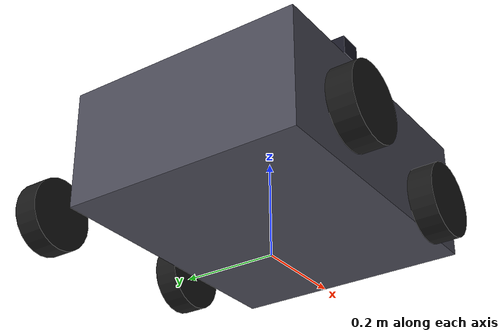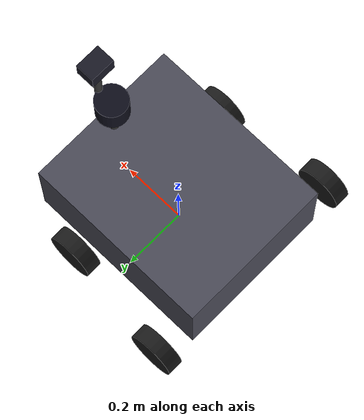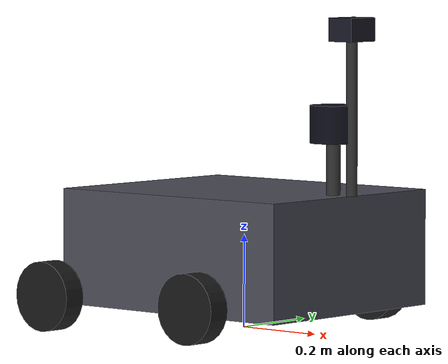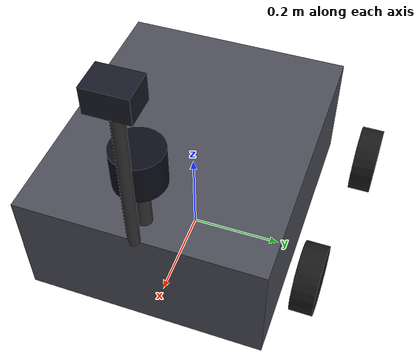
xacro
<?xml version="1.0"?>
<robot xmlns:xacro="http://ros.org/wiki/xacro" name="factory_robot">

  <!-- ============ 基础参数 ============ -->
  <xacro:property name="wheel_r" value="0.075"/>
  <xacro:property name="wheel_w" value="0.05"/>

  <!-- [OPT] 传感器位置参数化，便于统一调整 -->
  <xacro:property name="imu_x"   value="0.0"/>
  <xacro:property name="imu_z"   value="0.30"/>
  <xacro:property name="lidar_x" value="0.25"/>
  <xacro:property name="lidar_z" value="0.45"/>
  <xacro:property name="cam_x"   value="0.30"/>
  <xacro:property name="cam_z"   value="0.65"/>
  <xacro:property name="base_top_z" value="0.30"/>  <!-- 底盘顶面 z -->

  <!-- ============ base_link：差速底盘 ============ -->
  <link name="base_link">
    <visual>
      <origin xyz="0 0 0.175" rpy="0 0 0"/>
      <geometry><box size="0.6 0.5 0.25"/></geometry>
      <material name="mat_base"><color rgba="0.3 0.3 0.35 1.0"/></material>
    </visual>
    <collision>
      <origin xyz="0 0 0.175" rpy="0 0 0"/>
      <geometry><box size="0.6 0.5 0.25"/></geometry>
    </collision>
    <inertial>
      <origin xyz="0 0 0.175"/>
      <mass value="18.0"/>
      <!-- [OPT] 惯量按盒体公式修正：Ixx=0.52, Iyy=0.63, Izz=0.91 -->
      <inertia ixx="0.52" ixy="0" ixz="0" iyy="0.63" iyz="0" izz="0.91"/>
    </inertial>
  </link>

  <!-- ============ 驱动轮 x2 ============ -->
  <xacro:macro name="drive_wheel" params="prefix y_reflect">
    <link name="${prefix}_wheel_link">
      <visual>
        <origin xyz="0 0 0" rpy="0 0 0"/>
        <geometry><cylinder radius="${wheel_r}" length="${wheel_w}"/></geometry>
        <material name="mat_wheel"><color rgba="0.1 0.1 0.1 1.0"/></material>
      </visual>
      <collision>
        <origin xyz="0 0 0" rpy="0 0 0"/>
        <geometry><cylinder radius="${wheel_r}" length="${wheel_w}"/></geometry>
      </collision>
      <inertial>
        <mass value="0.6"/>
        <inertia ixx="0.0011" ixy="0" ixz="0" iyy="0.0011" iyz="0" izz="0.0017"/>
      </inertial>
    </link>
    <!-- 关节：rpy=-pi/2 把圆柱轴从 z 转到父系 y；axis 0 0 1 在关节系即绕父系 y 滚动 -->
    <joint name="${prefix}_wheel_joint" type="continuous">
      <parent link="base_link"/>
      <child link="${prefix}_wheel_link"/>
      <origin xyz="0.12 ${y_reflect*0.3} ${wheel_r}" rpy="${-pi/2} 0 0"/>
      <axis xyz="0 0 1"/>
    </joint>
  </xacro:macro>
  <xacro:drive_wheel prefix="left" y_reflect="1"/>
  <xacro:drive_wheel prefix="right" y_reflect="-1"/>

  <!-- [OPT] 驱动轮摩擦参数（P0：防止打滑/跑偏） -->
  <gazebo reference="left_wheel_link">
    <mu1>0.8</mu1><mu2>0.8</mu2>
    <kp>1000000.0</kp><kd>100.0</kd>
  </gazebo>
  <gazebo reference="right_wheel_link">
    <mu1>0.8</mu1><mu2>0.8</mu2>
    <kp>1000000.0</kp><kd>100.0</kd>
  </gazebo>

  <!-- ============ 后部两个从动轮：转向关节(绕z)+自由轮(绕y) ============ -->
  <xacro:macro name="rear_caster_wheel" params="prefix y_reflect">
    <link name="${prefix}_steer_link">
      <!-- [OPT] 加 visual，便于 RViz 观察转向 -->
      <visual>
        <geometry><cylinder radius="0.02" length="0.03"/></geometry>
        <material name="mat_steer"><color rgba="0.4 0.4 0.45 1.0"/></material>
      </visual>
      <inertial>
        <mass value="0.1"/>
        <inertia ixx="0.0002" ixy="0" ixz="0" iyy="0.0002" iyz="0" izz="0.0002"/>
      </inertial>
    </link>
    <!-- [OPT] 转向关节放宽到 ±pi，避免被动转向卡边界；加 dynamics friction -->
    <joint name="${prefix}_steer_joint" type="revolute">
      <parent link="base_link"/>
      <child link="${prefix}_steer_link"/>
      <origin xyz="-0.22 ${y_reflect*0.345} 0.078" rpy="0 0 0"/>
      <axis xyz="0 0 1"/>
      <limit effort="1.0" velocity="4.0" lower="-3.14" upper="3.14"/>
      <dynamics damping="0.3" friction="0.1"/>
    </joint>
    <link name="${prefix}_wheel_link">
      <visual>
        <geometry><cylinder radius="${wheel_r}" length="${wheel_w}"/></geometry>
        <material name="${prefix}_wheel_mat"><color rgba="0.1 0.1 0.1 1.0"/></material>
      </visual>
      <collision>
        <geometry><cylinder radius="${wheel_r}" length="${wheel_w}"/></geometry>
      </collision>
      <inertial>
        <mass value="0.4"/>
        <inertia ixx="0.0005" ixy="0" ixz="0" iyy="0.0005" iyz="0" izz="0.0011"/>
      </inertial>
    </link>
    <joint name="${prefix}_wheel_joint" type="continuous">
      <parent link="${prefix}_steer_link"/>
      <child link="${prefix}_wheel_link"/>
      <origin xyz="-0.03 0 0" rpy="${-pi/2} 0 0"/>
      <axis xyz="0 0 1"/>
    </joint>
    <!-- [OPT] 摩擦与驱动轮统一 kp/kd -->
    <gazebo reference="${prefix}_wheel_link">
      <mu1>0.5</mu1><mu2>0.5</mu2>
      <kp>1000000.0</kp><kd>100.0</kd>
    </gazebo>
  </xacro:macro>
  <xacro:rear_caster_wheel prefix="rear_left" y_reflect="1"/>
  <xacro:rear_caster_wheel prefix="rear_right" y_reflect="-1"/>

  <!-- ============ [OPT] 支撑杆（消除传感器悬空） ============ -->
  <xacro:macro name="mast" params="name x z_top radius">
    <link name="${name}_mast_link">
      <visual>
        <geometry><cylinder radius="${radius}" length="${z_top - base_top_z}"/></geometry>
        <material name="mat_mast"><color rgba="0.2 0.2 0.2 1.0"/></material>
      </visual>
      <inertial>
        <mass value="0.1"/>
        <inertia ixx="0.0001" ixy="0" ixz="0" iyy="0.0001" iyz="0" izz="0.0001"/>
      </inertial>
    </link>
    <joint name="${name}_mast_joint" type="fixed">
      <parent link="base_link"/>
      <child link="${name}_mast_link"/>
      <!-- 支柱中心 = 底盘顶 + 长度/2 -->
      <origin xyz="${x} 0 ${base_top_z + (z_top - base_top_z)/2.0}" rpy="0 0 0"/>
    </joint>
  </xacro:macro>
  <xacro:mast name="lidar" x="${lidar_x}" z_top="${lidar_z}" radius="0.015"/>
  <xacro:mast name="camera" x="${cam_x}"  z_top="${cam_z}"  radius="0.012"/>

  <!-- ============ 3D LiDAR ============ -->
  <link name="lidar_link">
    <visual>
      <geometry><cylinder radius="0.05" length="0.08"/></geometry>
      <material name="mat_lidar"><color rgba="0.05 0.05 0.1 1.0"/></material>
    </visual>
    <inertial>
      <mass value="0.5"/>
      <inertia ixx="0.0006" ixy="0" ixz="0" iyy="0.0006" iyz="0" izz="0.0004"/>
    </inertial>
  </link>
  <!-- [OPT] LiDAR 挂在支柱顶端 -->
  <joint name="lidar_joint" type="fixed">
    <parent link="lidar_mast_link"/>
    <child link="lidar_link"/>
    <origin xyz="0 0 ${(lidar_z - base_top_z)/2.0}" rpy="0 0 0"/>
  </joint>

  <gazebo reference="lidar_link">
    <!-- [OPT] 注释修正：3 线（-15..+15 度），供 pointcloud_to_laserscan 切片 -->
    <sensor name="lidar" type="ray">
      <pose>0 0 0 0 0 0</pose>
      <always_on>true</always_on>
      <visualize>false</visualize>
      <update_rate>10.0</update_rate>
      <ray>
        <scan>
          <horizontal>
            <samples>360</samples>   <!-- [OPT] 180→360，1° 分辨率，利于 SLAM -->
            <resolution>1.0</resolution>
            <min_angle>-3.14159</min_angle>
            <max_angle>3.14159</max_angle>
          </horizontal>
          <vertical>
            <samples>17</samples>
            <resolution>1.0</resolution>
            <min_angle>-0.2793</min_angle>
            <max_angle>0.2793</max_angle>
          </vertical>
        </scan>
        <range>
          <min>0.2</min>
          <max>30.0</max>
          <resolution>0.01</resolution>
        </range>
        <noise>
          <type>gaussian</type>
          <mean>0.0</mean>
          <stddev>0.02</stddev>
        </noise>
      </ray>
      <plugin name="lidar_ros" filename="libgazebo_ros_ray_sensor.so">
        <ros>
          <remapping>~/out:=/lidar/points_raw</remapping>
        </ros>
        <output_type>sensor_msgs/PointCloud2</output_type>
        <frame_name>lidar_link</frame_name>
      </plugin>
    </sensor>
  </gazebo>

  <!-- ============ RGB 相机 ============ -->
  <link name="camera_link">
    <visual>
      <geometry><box size="0.06 0.08 0.05"/></geometry>
      <material name="mat_camera"><color rgba="0.1 0.1 0.15 1.0"/></material>
    </visual>
    <!-- [OPT] 加 collision，防撞 -->
    <inertial>
      <mass value="0.1"/>
      <inertia ixx="0.00001" ixy="0" ixz="0" iyy="0.00001" iyz="0" izz="0.00001"/>
    </inertial>
  </link>
  <!-- [OPT] 相机挂在支柱顶端 -->
  <joint name="camera_joint" type="fixed">
    <parent link="camera_mast_link"/>
    <child link="camera_link"/>
    <origin xyz="0 0 ${(cam_z - base_top_z)/2.0}" rpy="0 0 0"/>
  </joint>

  <gazebo reference="camera_link">
    <sensor name="camera" type="camera">
      <pose>0 0 0 0 0.1745 0</pose>
      <always_on>true</always_on>
      <update_rate>15.0</update_rate>
      <camera>
        <horizontal_fov>1.1408</horizontal_fov>
        <image>
          <width>640</width>
          <height>384</height>
          <format>R8G8B8</format>
        </image>
        <!-- [OPT] 补 distortion（全 0），camera_info 更完整 -->
        <distortion>
          <k1>0.0</k1><k2>0.0</k2><k3>0.0</k3>
          <p1>0.0</p1><p2>0.0</p2>
          <center>0.5 0.5</center>
        </distortion>
        <clip>
          <near>0.05</near>
          <far>30.0</far>
        </clip>
      </camera>
      <plugin name="camera_ros" filename="libgazebo_ros_camera.so">
        <ros>
          <remapping>~/image_raw:=/camera/image_raw</remapping>
          <remapping>~/camera_info:=/camera/camera_info</remapping>
        </ros>
        <camera_name>camera</camera_name>
        <frame_name>camera_link</frame_name>
      </plugin>
    </sensor>
  </gazebo>

  <!-- ============ IMU ============ -->
  <link name="imu_link">
    <inertial>
      <mass value="0.05"/>
      <inertia ixx="0.000001" ixy="0" ixz="0" iyy="0.000001" iyz="0" izz="0.000001"/>
    </inertial>
  </link>
  <!-- [OPT] IMU 降到 z=0.30 贴顶面，靠近质心 -->
  <joint name="imu_joint" type="fixed">
    <parent link="base_link"/>
    <child link="imu_link"/>
    <origin xyz="${imu_x} 0 ${imu_z}" rpy="0 0 0"/>
  </joint>

  <gazebo reference="imu_link">
    <sensor name="imu" type="imu">
      <always_on>true</always_on>
      <update_rate>50.0</update_rate>
      <imu>
        <angular_velocity>
          <x><noise type="gaussian"><mean>0.0</mean><stddev>2e-4</stddev></noise></x>
          <y><noise type="gaussian"><mean>0.0</mean><stddev>2e-4</stddev></noise></y>
          <z><noise type="gaussian"><mean>0.0</mean><stddev>2e-4</stddev></noise></z>
        </angular_velocity>
        <linear_acceleration>
          <x><noise type="gaussian"><mean>0.0</mean><stddev>2e-2</stddev></noise></x>
          <y><noise type="gaussian"><mean>0.0</mean><stddev>2e-2</stddev></noise></y>
          <z><noise type="gaussian"><mean>0.0</mean><stddev>2e-2</stddev></noise></z>
        </linear_acceleration>
      </imu>
      <plugin name="imu_ros" filename="libgazebo_ros_imu_sensor.so">
        <ros>
          <remapping>~/out:=/imu</remapping>
        </ros>
        <frame_name>imu_link</frame_name>
      </plugin>
    </sensor>
  </gazebo>

  <!-- ============ 关节状态发布 ============ -->
  <gazebo>
    <plugin name="joint_state_publisher" filename="libgazebo_ros_joint_state_publisher.so">
      <ros>
        <remapping>~/out:=/joint_states</remapping>
      </ros>
      <update_rate>30.0</update_rate>
      <joint_name>left_wheel_joint</joint_name>
      <joint_name>right_wheel_joint</joint_name>
      <joint_name>rear_left_steer_joint</joint_name>
      <joint_name>rear_left_wheel_joint</joint_name>
      <joint_name>rear_right_steer_joint</joint_name>
      <joint_name>rear_right_wheel_joint</joint_name>
    </plugin>
  </gazebo>

  <!-- ============ 差速驱动插件 ============ -->
  <gazebo>
    <plugin name="diff_drive" filename="libgazebo_ros_diff_drive.so">
      <update_rate>30.0</update_rate>
      <left_joint>left_wheel_joint</left_joint>
      <right_joint>right_wheel_joint</right_joint>
      <wheel_separation>0.6</wheel_separation>
      <wheel_diameter>0.15</wheel_diameter>
      <max_wheel_torque>30.0</max_wheel_torque>        <!-- [OPT] 20→30，爬坡余量 -->
      <max_wheel_acceleration>1.5</max_wheel_acceleration>
      <publish_odom>true</publish_odom>
      <publish_odom_tf>false</publish_odom_tf>
      <covariance_x>0.05</covariance_x>
      <covariance_y>0.05</covariance_y>
      <covariance_yaw>0.02</covariance_yaw>
      <publish_wheel_tf>false</publish_wheel_tf>
      <publish_joint_state>false</publish_joint_state>
      <odometry_frame>odom</odometry_frame>
      <robot_base_frame>base_link</robot_base_frame>
    </plugin>
  </gazebo>

</robot>
